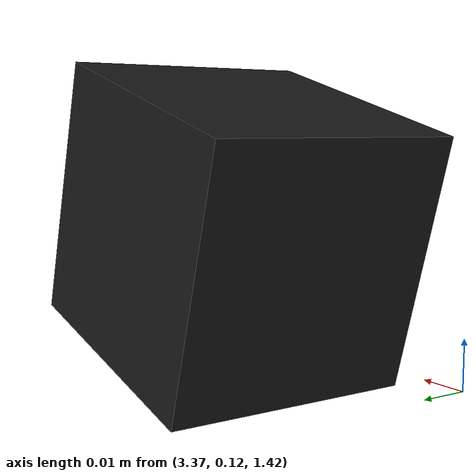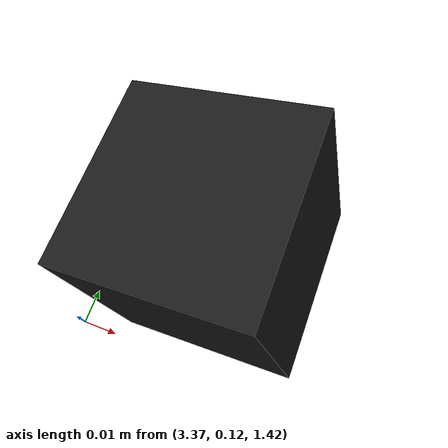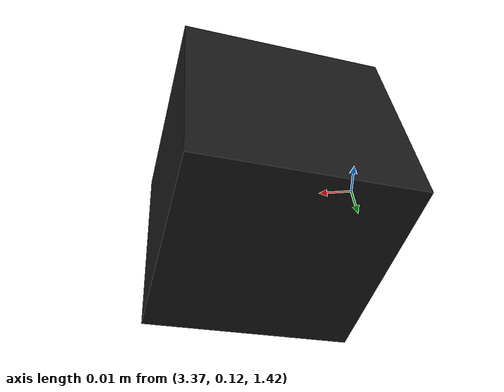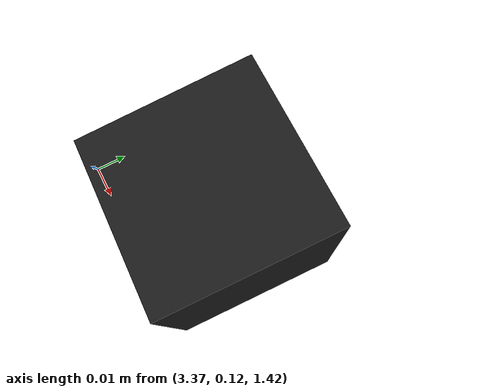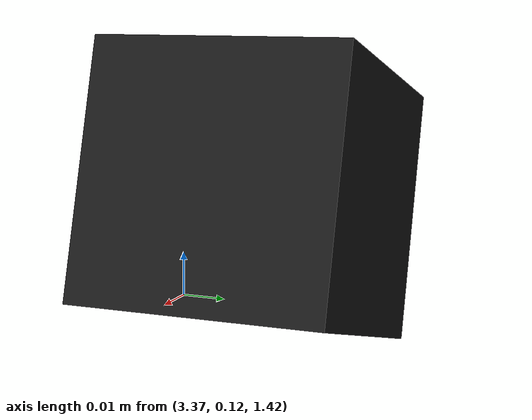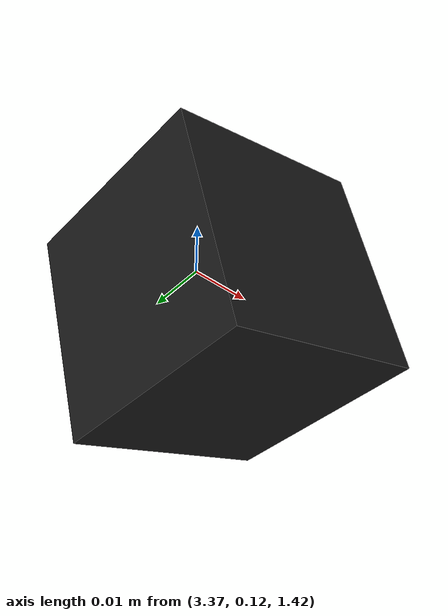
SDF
<?xml version="1.0" ?>
<sdf version="1.9">
  <!-- World-fixed side camera for docs recording only. Looks along +X of the link. -->
  <model name="docs_side_camera">
    <static>true</static>
    <!-- Pure side view from +X: rail runs across the frame, shelf on +Y, tray on -Y. -->
    <pose>3.4 0.15 1.45 0 0.28 3.14159</pose>
    <link name="link">
      <visual name="visual">
        <geometry><box><size>0.05 0.05 0.05</size></box></geometry>
        <material>
          <ambient>0.1 0.1 0.1 1</ambient>
          <diffuse>0.1 0.1 0.1 1</diffuse>
        </material>
      </visual>
      <sensor name="camera" type="camera">
        <always_on>true</always_on>
        <!-- Keep load low: wrist depth must stay under ~500 ms liveness. -->
        <update_rate>8</update_rate>
        <topic>docs_side_camera</topic>
        <camera>
          <horizontal_fov>1.05</horizontal_fov>
          <image>
            <width>960</width>
            <height>540</height>
          </image>
          <clip>
            <near>0.15</near>
            <far>25</far>
          </clip>
        </camera>
      </sensor>
    </link>
  </model>
</sdf>
